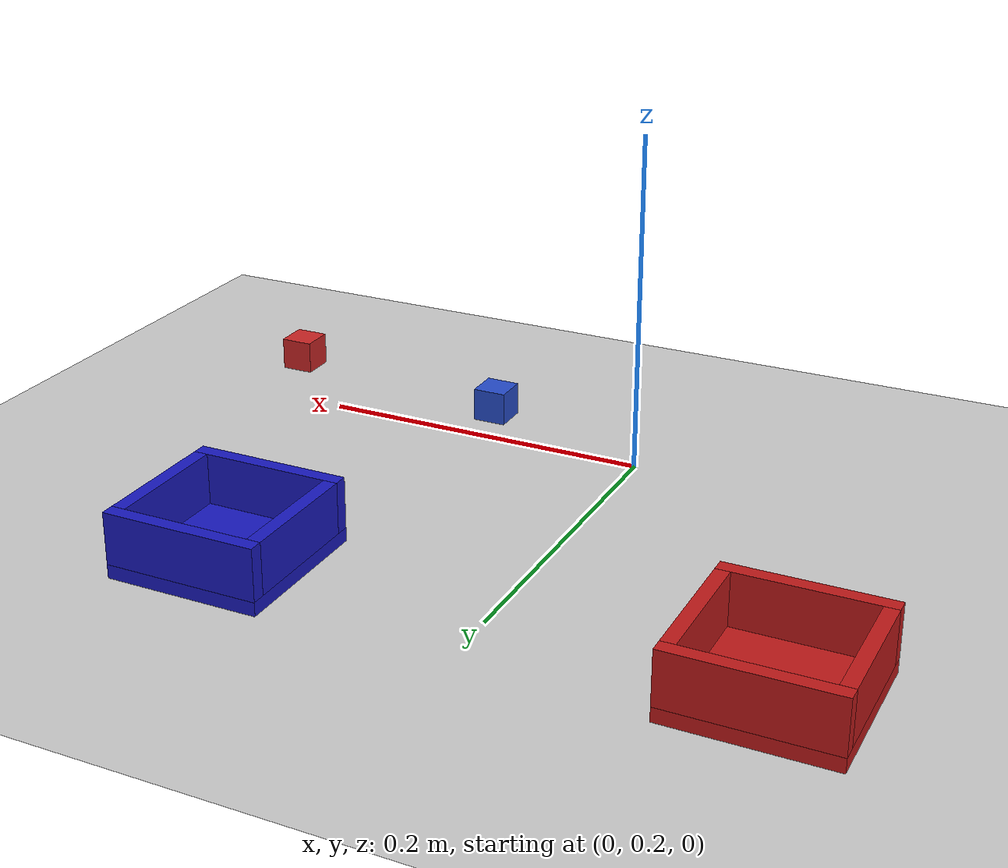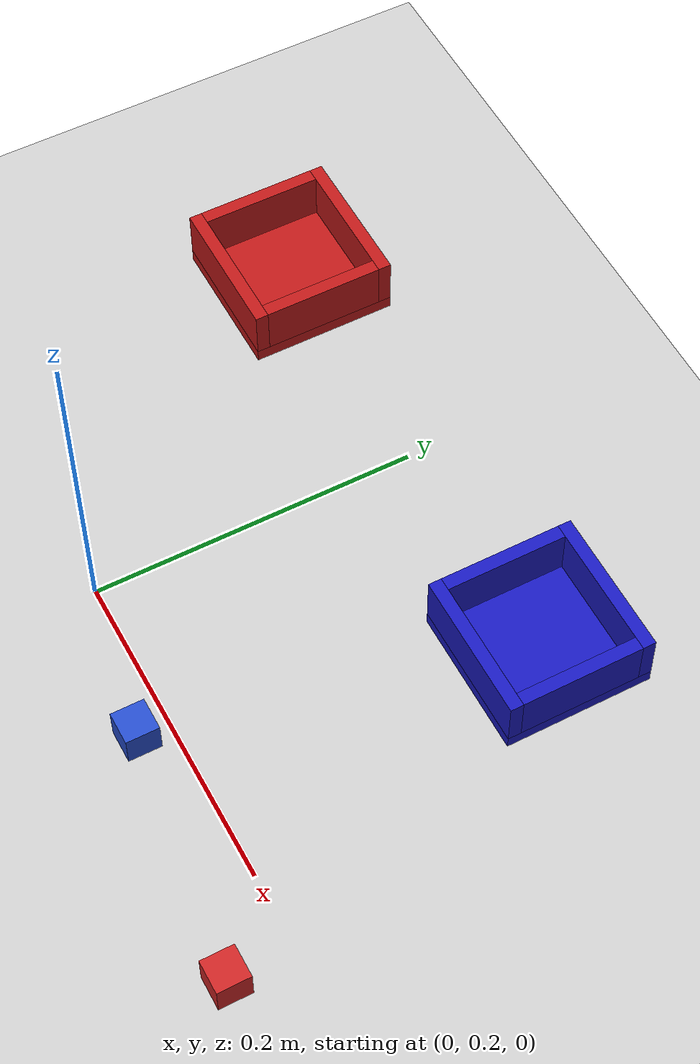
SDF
<?xml version="1.0" ?>
<sdf version="1.7">
  <world name="default">

      <!-- Plugin for simulating physics -->
    <plugin
      filename="gz-sim-physics-system"
      name="gz::sim::systems::Physics">
    </plugin>

    <!-- Plugin for handling user commands -->
    <plugin
      filename="gz-sim-user-commands-system"
      name="gz::sim::systems::UserCommands">
    </plugin>

    <!-- Plugin for broadcasting scene updates -->
    <plugin
      filename="gz-sim-scene-broadcaster-system"
      name="gz::sim::systems::SceneBroadcaster">
    </plugin>

    <!-- Plugin for sensor handling -->
    <plugin
      filename="gz-sim-sensors-system"
      name="gz::sim::systems::Sensors">
      <render_engine>ogre2</render_engine>
    </plugin>

    <!-- A global light source -->
    <include>
      <uri>model://sun</uri>
    </include>
    <!-- A ground plane -->
    <include>
      <uri>model://ground_plane</uri>
    </include>

    <!-- Bins -->
    <include>
      <uri>model://bin_red</uri>
      <pose>-0.15 0.40 0 0 0 0</pose>
      <static>1</static>

    </include>

    <include>
      <uri>model://bin_blue</uri>
      <pose>0.15 0.40 0.0 0 0 0</pose>
      <static>1</static>
    </include>

    <!-- Blocks -->

    <include>
      <uri>model://block_red</uri>
      <pose>0.25 0.16 0.015 0 0 0</pose>
      <name>block_red_1</name>
    </include>

    <include>
      <uri>model://block_blue</uri>
      <pose>0.1 0.18 0.015 0 0 0</pose>
      <name>block_blue_1</name>
    </include>

  </world>
</sdf>

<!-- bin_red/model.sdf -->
<sdf version="1.8">
  <model name="bin_red">
    <static>true</static>
    <link name="link">
      <collision name="floor_collision"><pose>0 0 0.004 0 0 0</pose><geometry><box><size>0.09 0.09 0.008</size></box></geometry></collision>
      <visual name="floor_visual"><pose>0 0 0.004 0 0 0</pose><geometry><box><size>0.09 0.09 0.008</size></box></geometry><material><ambient>0.55 0.08 0.08 1</ambient><diffuse>0.75 0.10 0.10 1</diffuse></material></visual>
      <collision name="wall_n_collision"><pose>0 0.041 0.023 0 0 0</pose><geometry><box><size>0.09 0.008 0.03</size></box></geometry></collision>
      <visual name="wall_n_visual"><pose>0 0.041 0.023 0 0 0</pose><geometry><box><size>0.09 0.008 0.03</size></box></geometry><material><ambient>0.55 0.08 0.08 1</ambient><diffuse>0.75 0.10 0.10 1</diffuse></material></visual>
      <collision name="wall_s_collision"><pose>0 -0.041 0.023 0 0 0</pose><geometry><box><size>0.09 0.008 0.03</size></box></geometry></collision>
      <visual name="wall_s_visual"><pose>0 -0.041 0.023 0 0 0</pose><geometry><box><size>0.09 0.008 0.03</size></box></geometry><material><ambient>0.55 0.08 0.08 1</ambient><diffuse>0.75 0.10 0.10 1</diffuse></material></visual>
      <collision name="wall_e_collision"><pose>0.041 0 0.023 0 0 0</pose><geometry><box><size>0.008 0.074 0.03</size></box></geometry></collision>
      <visual name="wall_e_visual"><pose>0.041 0 0.023 0 0 0</pose><geometry><box><size>0.008 0.074 0.03</size></box></geometry><material><ambient>0.55 0.08 0.08 1</ambient><diffuse>0.75 0.10 0.10 1</diffuse></material></visual>
      <collision name="wall_w_collision"><pose>-0.041 0 0.023 0 0 0</pose><geometry><box><size>0.008 0.074 0.03</size></box></geometry></collision>
      <visual name="wall_w_visual"><pose>-0.041 0 0.023 0 0 0</pose><geometry><box><size>0.008 0.074 0.03</size></box></geometry><material><ambient>0.55 0.08 0.08 1</ambient><diffuse>0.75 0.10 0.10 1</diffuse></material></visual>
    </link>
  </model>
</sdf>

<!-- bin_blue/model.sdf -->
<sdf version="1.8">
  <model name="bin_blue">
    <static>true</static>
    <link name="link">
      <collision name="floor_collision"><pose>0 0 0.004 0 0 0</pose><geometry><box><size>0.09 0.09 0.008</size></box></geometry></collision>
      <visual name="floor_visual"><pose>0 0 0.004 0 0 0</pose><geometry><box><size>0.09 0.09 0.008</size></box></geometry><material><ambient>0.08 0.08 0.55 1</ambient><diffuse>0.10 0.10 0.75 1</diffuse></material></visual>
      <collision name="wall_n_collision"><pose>0 0.041 0.023 0 0 0</pose><geometry><box><size>0.09 0.008 0.03</size></box></geometry></collision>
      <visual name="wall_n_visual"><pose>0 0.041 0.023 0 0 0</pose><geometry><box><size>0.09 0.008 0.03</size></box></geometry><material><ambient>0.08 0.08 0.55 1</ambient><diffuse>0.10 0.10 0.75 1</diffuse></material></visual>
      <collision name="wall_s_collision"><pose>0 -0.041 0.023 0 0 0</pose><geometry><box><size>0.09 0.008 0.03</size></box></geometry></collision>
      <visual name="wall_s_visual"><pose>0 -0.041 0.023 0 0 0</pose><geometry><box><size>0.09 0.008 0.03</size></box></geometry><material><ambient>0.08 0.08 0.55 1</ambient><diffuse>0.10 0.10 0.75 1</diffuse></material></visual>
      <collision name="wall_e_collision"><pose>0.041 0 0.023 0 0 0</pose><geometry><box><size>0.008 0.074 0.03</size></box></geometry></collision>
      <visual name="wall_e_visual"><pose>0.041 0 0.023 0 0 0</pose><geometry><box><size>0.008 0.074 0.03</size></box></geometry><material><ambient>0.08 0.08 0.55 1</ambient><diffuse>0.10 0.10 0.75 1</diffuse></material></visual>
      <collision name="wall_w_collision"><pose>-0.041 0 0.023 0 0 0</pose><geometry><box><size>0.008 0.074 0.03</size></box></geometry></collision>
      <visual name="wall_w_visual"><pose>-0.041 0 0.023 0 0 0</pose><geometry><box><size>0.008 0.074 0.03</size></box></geometry><material><ambient>0.08 0.08 0.55 1</ambient><diffuse>0.10 0.10 0.75 1</diffuse></material></visual>
    </link>
  </model>
</sdf>

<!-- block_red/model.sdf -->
<sdf version='1.6'>
  <model name='block_red'>
    <link name='link'>
      <pose>0.0 0.0 0.0 0 -0 0</pose>
      <inertial>
        <!--NOTE: Uses limestone density (i.e 2000 kg/m^3) to calculate the mass
        see https://en.wikipedia.org/wiki/Limestone
        -->
        <mass>0.1024</mass>
        <inertia>
          <ixx>4.369e-5</ixx>
          <ixy>0</ixy>
          <ixz>0</ixz>
          <iyy>4.028e-5</iyy>
          <iyz>0</iyz>
          <izz>1.407e-5</izz>
        </inertia>
        <pose>0 0 0 0 -0 0</pose>
      </inertial>
        <self_collide>0</self_collide>
      <kinematic>0</kinematic>
      <enable_wind>0</enable_wind>
      <pose>0 0 0 0 -0 0</pose>
      <visual name='visual'>
        <geometry>
          <box>
            <size>0.02 0.02 0.02</size>
          </box>
        </geometry>
        <material>
          <script>
            <uri>file://media/materials/scripts/gazebo.material</uri>
            <name>Gazebo/Red</name>
          </script>
          <shader type='pixel'/>
        </material>
        <pose>0 0 0 0 -0 0</pose>
        <transparency>0</transparency>
        <cast_shadows>1</cast_shadows>
      </visual>
      <collision name='collision'>
        <laser_retro>0</laser_retro>
        <max_contacts>10</max_contacts>
        <pose>0 0 0 0 -0 0</pose>
        <geometry>
          <box>
            <size>0.02 0.02 0.02</size>
          </box>
        </geometry>
        <surface>
          <!--NOTE: Uses dynamic friction of brick on a wood surface
          see https://www.engineeringtoolbox.com/friction-coefficients-d_778.html
          -->
          <friction>
            <ode>
              <mu>1.0</mu>
              <mu2>1.0</mu2>
              <fdir1>0 0 0</fdir1>
              <slip1>0</slip1>
              <slip2>0</slip2>
            </ode>
            <torsional>
              <coefficient>1</coefficient>
              <patch_radius>0</patch_radius>
              <surface_radius>0</surface_radius>
              <use_patch_radius>1</use_patch_radius>
              <ode>
                <slip>0</slip>
              </ode>
            </torsional>
          </friction>
          <bounce>
            <restitution_coefficient>0</restitution_coefficient>
            <threshold>1e+06</threshold>
          </bounce>
          <contact>
            <collide_without_contact>0</collide_without_contact>
            <collide_without_contact_bitmask>1</collide_without_contact_bitmask>
            <collide_bitmask>1</collide_bitmask>
            <ode>
              <soft_cfm>0</soft_cfm>
              <soft_erp>0.2</soft_erp>
              <kp>1e+13</kp>
              <kd>5</kd>
              <max_vel>0</max_vel>
              <min_depth>0.003</min_depth>
            </ode>
            <bullet>
              <split_impulse>1</split_impulse>
              <split_impulse_penetration_threshold>-0.01</split_impulse_penetration_threshold>
              <soft_cfm>0</soft_cfm>
              <soft_erp>0.2</soft_erp>
              <kp>1e+13</kp>
              <kd>1</kd>
            </bullet>
          </contact>
        </surface>
      </collision>
    </link>
    <static>0</static>
    <allow_auto_disable>1</allow_auto_disable>
  </model>
</sdf>

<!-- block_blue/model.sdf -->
<sdf version='1.6'>
  <model name='block_blue'>
    <link name='link'>
      <pose>0.0 0.0 0.0 0 -0 0</pose>
      <inertial>
        <!--NOTE: Uses limestone density (i.e 2000 kg/m^3) to calculate the mass
        see https://en.wikipedia.org/wiki/Limestone
        -->
        <mass>0.1024</mass>
        <inertia>
          <ixx>4.369e-5</ixx>
          <ixy>0</ixy>
          <ixz>0</ixz>
          <iyy>4.028e-5</iyy>
          <iyz>0</iyz>
          <izz>1.407e-5</izz>
        </inertia>
        <pose>0 0 0 0 -0 0</pose>
      </inertial>
        <self_collide>0</self_collide>
      <kinematic>0</kinematic>
      <enable_wind>0</enable_wind>
      <pose>0 0 0 0 -0 0</pose>
      <visual name='visual'>
        <geometry>
          <box>
            <size>0.02 0.02 0.02</size>
          </box>
        </geometry>
        <material>
          <script>
            <uri>file://media/materials/scripts/gazebo.material</uri>
            <name>Gazebo/Blue</name>
          </script>
          <shader type='pixel'/>
        </material>
        <pose>0 0 0 0 -0 0</pose>
        <transparency>0</transparency>
        <cast_shadows>1</cast_shadows>
      </visual>
      <collision name='collision'>
        <laser_retro>0</laser_retro>
        <max_contacts>10</max_contacts>
        <pose>0 0 0 0 -0 0</pose>
        <geometry>
          <box>
            <size>0.02 0.02 0.02</size>
          </box>
        </geometry>
        <surface>
          <!--NOTE: Uses dynamic friction of brick on a wood surface
          see https://www.engineeringtoolbox.com/friction-coefficients-d_778.html
          -->
          <friction>
            <ode>
              <mu>1.0</mu>
              <mu2>1.0</mu2>
              <fdir1>0 0 0</fdir1>
              <slip1>0</slip1>
              <slip2>0</slip2>
            </ode>
            <torsional>
              <coefficient>1</coefficient>
              <patch_radius>0</patch_radius>
              <surface_radius>0</surface_radius>
              <use_patch_radius>1</use_patch_radius>
              <ode>
                <slip>0</slip>
              </ode>
            </torsional>
          </friction>
          <bounce>
            <restitution_coefficient>0</restitution_coefficient>
            <threshold>1e+06</threshold>
          </bounce>
          <contact>
            <collide_without_contact>0</collide_without_contact>
            <collide_without_contact_bitmask>1</collide_without_contact_bitmask>
            <collide_bitmask>1</collide_bitmask>
            <ode>
              <soft_cfm>0</soft_cfm>
              <soft_erp>0.2</soft_erp>
              <kp>1e+13</kp>
              <kd>5</kd>
              <max_vel>0</max_vel>
              <min_depth>0.003</min_depth>
            </ode>
            <bullet>
              <split_impulse>1</split_impulse>
              <split_impulse_penetration_threshold>-0.01</split_impulse_penetration_threshold>
              <soft_cfm>0</soft_cfm>
              <soft_erp>0.2</soft_erp>
              <kp>1e+13</kp>
              <kd>1</kd>
            </bullet>
          </contact>
        </surface>
      </collision>
    </link>
    <static>0</static>
    <allow_auto_disable>1</allow_auto_disable>
  </model>
</sdf>
